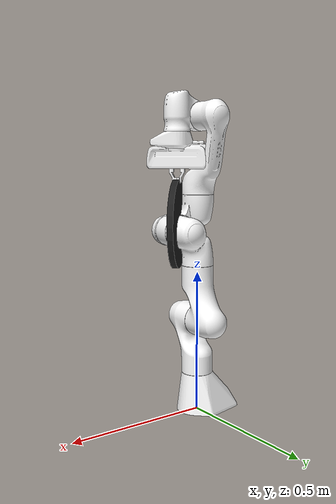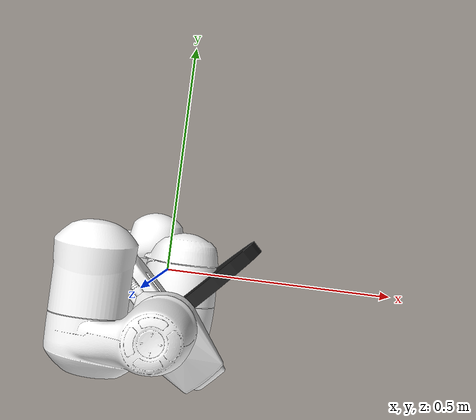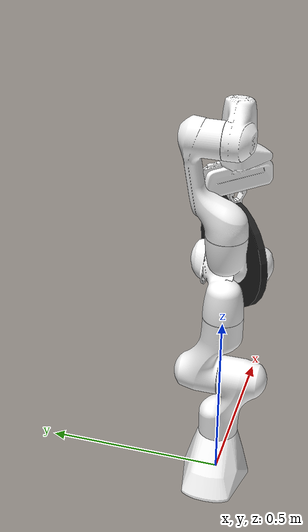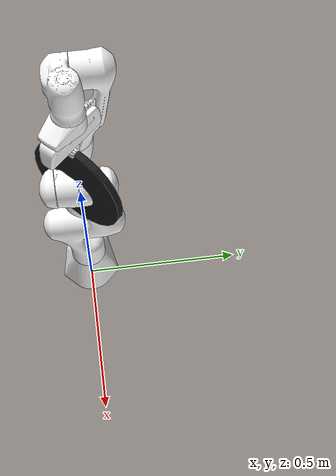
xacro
<?xml version="1.0" ?>
<robot name="panda_tray" xmlns:xacro="http://www.ros.org/wiki/xacro">
  <xacro:include filename="panda.urdf.xacro" />

  <link name="tray_link">
    <visual>
      <origin rpy="0 0 0" xyz="0 0 0"/>
      <geometry>
        <cylinder length="0.02" radius="0.15"/>
      </geometry>
      <material name="black"/>
    </visual>
    <collision>
      <origin rpy="0 0 0" xyz="0 0 0"/>
      <geometry>
        <cylinder length="0.02" radius="0.15"/>
      </geometry>
    </collision>
  </link>

  <joint name="tray_joint" type="fixed">
    <origin rpy="-1.5708 -1.5708 0.0" xyz="0.0 0.0 0.25"/>
    <parent link="panda_hand"/>
    <child link="tray_link"/>
  </joint>
</robot>

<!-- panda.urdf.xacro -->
<robot name="panda" xmlns:xacro="http://www.ros.org/wiki/xacro">
  <link name="panda_link0">
  	<inertial>
      <origin rpy="0 0 0" xyz="0 0 0.05"/>
       <mass value="2.9"/>
       <inertia ixx="0.1" ixy="0" ixz="0" iyy="0.1" iyz="0" izz="0.1"/>
    </inertial>
    <visual>
      <geometry>
        <mesh filename="meshes/collision/link0.obj"/>
      </geometry>
      <material name="panda_white">
    		<color rgba="1. 1. 1. 1."/>
  		</material>
    </visual>
    <collision>
      <geometry>
        <mesh filename="meshes/collision/link0.obj"/>
      </geometry>
      <material name="panda_white"/>
    </collision>
  </link>
  <link name="panda_link1">
  	<inertial>
      <origin rpy="0 0 0" xyz="0 -0.04 -0.05"/>
       <mass value="2.7"/>
       <inertia ixx="0.1" ixy="0" ixz="0" iyy="0.1" iyz="0" izz="0.1"/>
    </inertial>
    <visual>
      <geometry>
        <mesh filename="meshes/visual/link1.obj"/>
      </geometry>
      <material name="panda_white"/>
    </visual>
    <collision>
      <geometry>
        <mesh filename="meshes/collision/link1.obj"/>
      </geometry>
      <material name="panda_white"/>
    </collision>
  </link>
  <joint name="panda_joint1" type="revolute">
    <safety_controller k_position="100.0" k_velocity="40.0" soft_lower_limit="-2.8973" soft_upper_limit="2.8973"/>
    <origin rpy="0 0 0" xyz="0 0 0.333"/>
    <parent link="panda_link0"/>
    <child link="panda_link1"/>
    <axis xyz="0 0 1"/>
    <limit effort="87" lower="-2.9671" upper="2.9671" velocity="2.1750"/>
  </joint>
  <link name="panda_link2">
  	<inertial>
      <origin rpy="0 0 0" xyz="0 -0.04 0.06"/>
       <mass value="2.73"/>
       <inertia ixx="0.1" ixy="0" ixz="0" iyy="0.1" iyz="0" izz="0.1"/>
    </inertial>
    <visual>
      <geometry>
        <mesh filename="meshes/visual/link2.obj"/>
      </geometry>
      <material name="panda_white"/>
    </visual>
    <collision>
      <geometry>
        <mesh filename="meshes/collision/link2.obj"/>
      </geometry>
      <material name="panda_white"/>
    </collision>
  </link>
  <joint name="panda_joint2" type="revolute">
    <safety_controller k_position="100.0" k_velocity="40.0" soft_lower_limit="-1.7628" soft_upper_limit="1.7628"/>
    <origin rpy="-1.57079632679 0 0" xyz="0 0 0"/>
    <parent link="panda_link1"/>
    <child link="panda_link2"/>
    <axis xyz="0 0 1"/>
    <limit effort="87" lower="-1.8326" upper="1.8326" velocity="2.1750"/>
  </joint>
  <link name="panda_link3">
	  <inertial>
      <origin rpy="0 0 0" xyz="0.01 0.01 -0.05"/>
       <mass value="2.04"/>
       <inertia ixx="0.1" ixy="0" ixz="0" iyy="0.1" iyz="0" izz="0.1"/>
    </inertial>
    <visual>
      <geometry>
        <mesh filename="meshes/visual/link3.obj"/>
      </geometry>
      <material name="panda_red">
    		<color rgba="1. 1. 1. 1."/>
  		</material>
    </visual>
    <collision>
      <geometry>
        <mesh filename="meshes/collision/link3.obj"/>
      </geometry>
    </collision>
  </link>
  <joint name="panda_joint3" type="revolute">
    <safety_controller k_position="100.0" k_velocity="40.0" soft_lower_limit="-2.8973" soft_upper_limit="2.8973"/>
    <origin rpy="1.57079632679 0 0" xyz="0 -0.316 0"/>
    <parent link="panda_link2"/>
    <child link="panda_link3"/>
    <axis xyz="0 0 1"/>
    <limit effort="87" lower="-2.9671" upper="2.9671" velocity="2.1750"/>
  </joint>
  <link name="panda_link4">
  	<inertial>
      <origin rpy="0 0 0" xyz="-0.03 0.03 0.02"/>
       <mass value="2.08"/>
       <inertia ixx="0.1" ixy="0" ixz="0" iyy="0.1" iyz="0" izz="0.1"/>
    </inertial>
    <visual>
      <geometry>
        <mesh filename="meshes/visual/link4.obj"/>
      </geometry>
      <material name="panda_white"/>
    </visual>
    <collision>
      <geometry>
        <mesh filename="meshes/collision/link4.obj"/>
      </geometry>
      <material name="panda_white"/>
    </collision>
  </link>
  <joint name="panda_joint4" type="revolute">
    <safety_controller k_position="100.0" k_velocity="40.0" soft_lower_limit="-3.0718" soft_upper_limit="-0.0698"/>
    <origin rpy="1.57079632679 0 0" xyz="0.0825 0 0"/>
    <parent link="panda_link3"/>
    <child link="panda_link4"/>
    <axis xyz="0 0 1"/>
    <limit effort="87" lower="-3.1416" upper="0.0" velocity="2.1750"/>
  </joint>
  <link name="panda_link5">
  	<inertial>
      <origin rpy="0 0 0" xyz="0 0.04 -0.12"/>
       <mass value="3"/>
       <inertia ixx="0.1" ixy="0" ixz="0" iyy="0.1" iyz="0" izz="0.1"/>
    </inertial>
    <visual>
      <geometry>
        <mesh filename="meshes/visual/link5.obj"/>
      </geometry>
      <material name="panda_white"/>
    </visual>
    <collision>
      <geometry>
        <mesh filename="meshes/collision/link5.obj"/>
      </geometry>
      <material name="panda_white"/>
    </collision>
  </link>
  <joint name="panda_joint5" type="revolute">
    <safety_controller k_position="100.0" k_velocity="40.0" soft_lower_limit="-2.8973" soft_upper_limit="2.8973"/>
    <origin rpy="-1.57079632679 0 0" xyz="-0.0825 0.384 0"/>
    <parent link="panda_link4"/>
    <child link="panda_link5"/>
    <axis xyz="0 0 1"/>
    <limit effort="12" lower="-2.9671" upper="2.9671" velocity="2.6100"/>
  </joint>
  <link name="panda_link6">
  	<inertial>
      <origin rpy="0 0 0" xyz="0.04 0 0"/>
       <mass value="1.3"/>
       <inertia ixx="0.1" ixy="0" ixz="0" iyy="0.1" iyz="0" izz="0.1"/>
    </inertial>
    <visual>
      <geometry>
        <mesh filename="meshes/visual/link6.obj"/>
      </geometry>
      <material name="panda_white"/>
    </visual>
    <collision>
      <geometry>
        <mesh filename="meshes/collision/link6.obj"/>
      </geometry>
      <material name="panda_white"/>
    </collision>
  </link>
  <joint name="panda_joint6" type="revolute">
    <safety_controller k_position="100.0" k_velocity="40.0" soft_lower_limit="-0.0175" soft_upper_limit="3.7525"/>
    <origin rpy="1.57079632679 0 0" xyz="0 0 0"/>
    <parent link="panda_link5"/>
    <child link="panda_link6"/>
    <axis xyz="0 0 1"/>
    <limit effort="12" lower="-0.0873" upper="3.8223" velocity="2.6100"/>
  </joint>
  <link name="panda_link7">
  	<inertial>
      <origin rpy="0 0 0" xyz="0 0 0.08"/>
       <mass value=".2"/>
       <inertia ixx="0.1" ixy="0" ixz="0" iyy="0.1" iyz="0" izz="0.1"/>
    </inertial>
    <visual>
      <geometry>
        <mesh filename="meshes/collision/link7.obj"/>
      </geometry>
      <material name="panda_white"/>
    </visual>
    <collision>
      <geometry>
        <mesh filename="meshes/collision/link7.obj"/>
      </geometry>
      <material name="panda_white"/>
    </collision>
  </link>
  <joint name="panda_joint7" type="revolute">
    <safety_controller k_position="100.0" k_velocity="40.0" soft_lower_limit="-2.8973" soft_upper_limit="2.8973"/>
    <origin rpy="1.57079632679 0 0" xyz="0.088 0 0"/>
    <parent link="panda_link6"/>
    <child link="panda_link7"/>
    <axis xyz="0 0 1"/>
    <limit effort="12" lower="-2.9671" upper="2.9671" velocity="2.6100"/>
  </joint>
  <link name="panda_link8">
  	 <inertial>
      <origin rpy="0 0 0" xyz="0 0 0"/>
       <mass value="0.0"/>
       <inertia ixx="0.1" ixy="0" ixz="0" iyy="0.1" iyz="0" izz="0.1"/>
    </inertial>
  </link>
  <joint name="panda_joint8" type="fixed">
    <origin rpy="0 0 0" xyz="0 0 0.107"/>
    <parent link="panda_link7"/>
    <child link="panda_link8"/>
    <axis xyz="0 0 0"/>
  </joint>
  <joint name="panda_hand_joint" type="fixed">
    <parent link="panda_link8"/>
    <child link="panda_hand"/>
    <origin rpy="0 0 -0.785398163397" xyz="0 0 0"/>
  </joint>
  <link name="panda_hand">
  	<inertial>
      <origin rpy="0 0 0" xyz="0 0 0.04"/>
       <mass value=".81"/>
       <inertia ixx="0.1" ixy="0" ixz="0" iyy="0.1" iyz="0" izz="0.1"/>
    </inertial>
    <visual>
      <geometry>
        <mesh filename="meshes/visual/hand.obj"/>
      </geometry>
      <material name="panda_white"/>
    </visual>
    <collision>
      <geometry>
        <mesh filename="meshes/collision/hand.obj"/>
      </geometry>
      <material name="panda_white"/>
    </collision>
  </link>
  <link name="panda_leftfinger">
       <contact>
      <friction_anchor/>
      <stiffness value="30000.0"/>
      <damping value="1000.0"/>
      <spinning_friction value="0.1"/>
      <lateral_friction value="1.0"/>
    </contact>
  	<inertial>
      <origin rpy="0 0 0" xyz="0 0.01 0.02"/>
       <mass value="0.1"/>
       <inertia ixx="0.1" ixy="0" ixz="0" iyy="0.1" iyz="0" izz="0.1"/>
    </inertial>
    <visual>
      <geometry>
        <mesh filename="meshes/visual/finger.obj"/>
      </geometry>
      <material name="panda_white"/>
    </visual>
    <collision>
      <geometry>
        <mesh filename="meshes/collision/finger.obj"/>
      </geometry>
      <material name="panda_white"/>
    </collision>
  </link>
  <link name="panda_rightfinger">
        <contact>
      <friction_anchor/>
      <stiffness value="30000.0"/>
      <damping value="1000.0"/>
      <spinning_friction value="0.1"/>
      <lateral_friction value="1.0"/>
    </contact>

  	<inertial>
      <origin rpy="0 0 0" xyz="0 -0.01 0.02"/>
       <mass value="0.1"/>
       <inertia ixx="0.1" ixy="0" ixz="0" iyy="0.1" iyz="0" izz="0.1"/>
    </inertial>
    <visual>
      <origin rpy="0 0 3.14159265359" xyz="0 0 0"/>
      <geometry>
        <mesh filename="meshes/visual/finger.obj"/>
      </geometry>
      <material name="panda_white"/>
    </visual>
    <collision>
      <origin rpy="0 0 3.14159265359" xyz="0 0 0"/>
      <geometry>
        <mesh filename="meshes/collision/finger.obj"/>
      </geometry>
      <material name="panda_white"/>
    </collision>
  </link>
  <joint name="panda_finger_joint1" type="fixed">
    <parent link="panda_hand"/>
    <child link="panda_leftfinger"/>
    <origin rpy="0 0 0" xyz="0 0 0.0584"/>
    <axis xyz="0 1 0"/>
    <limit effort="20" lower="0.0" upper="0.04" velocity="0.2"/>
  </joint>
  <joint name="panda_finger_joint2" type="fixed">
    <parent link="panda_hand"/>
    <child link="panda_rightfinger"/>
    <origin rpy="0 0 0" xyz="0 0 0.0584"/>
    <axis xyz="0 -1 0"/>
    <limit effort="20" lower="0.0" upper="0.04" velocity="0.2"/>
    <mimic joint="panda_finger_joint1"/>
  </joint>
</robot>
